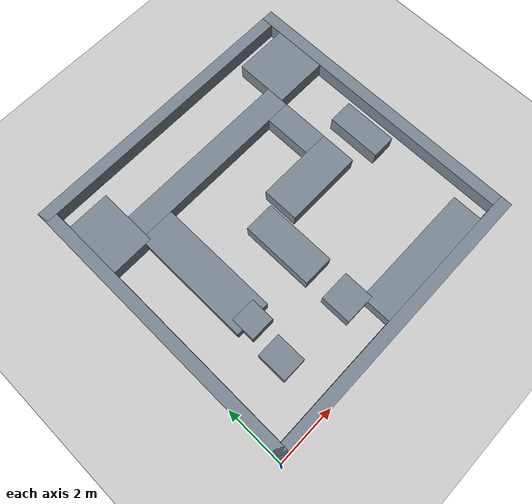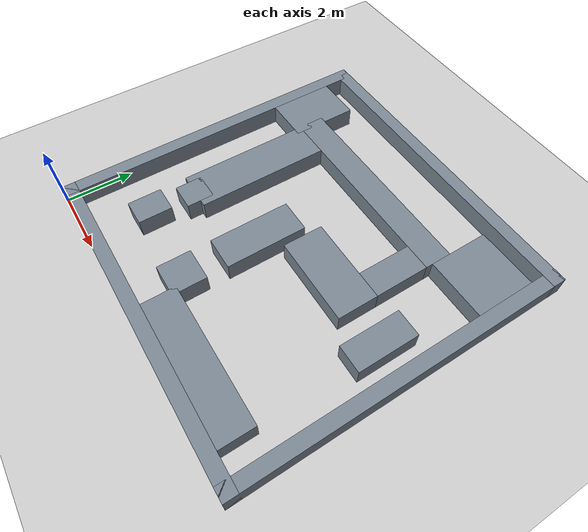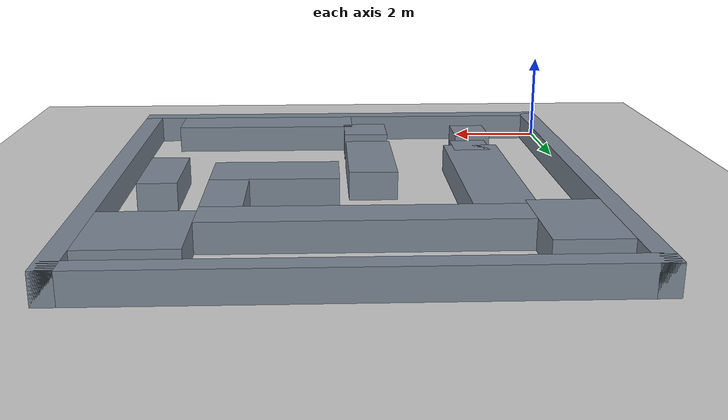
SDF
<?xml version="1.0" ?>
<sdf version="1.5">
  <world name="paper_alley">
    <!-- Global light source -->
    <include>
      <uri>model://sun</uri>
    </include>
    <!-- Ground plane -->
    <include>
      <uri>model://ground_plane</uri>
    </include>

    <scene>
      <ambient>0.7 0.7 0.7 1</ambient>
      <background>0.85 0.88 0.92 1</background>
      <shadows>true</shadows>
    </scene>

    <physics name="default_physics" default="0" type="ode">
      <max_step_size>0.002</max_step_size>
      <real_time_factor>1.0</real_time_factor>
      <real_time_update_rate>500</real_time_update_rate>
    </physics>

    <!-- Arena Boundary & Obstacle Walls from Paper Benchmark (Fig. 8 & Fig. 9) -->
    <model name="paper_wall_00">
      <static>true</static>
      <pose>5.000 0.200 0.30 0 0 0</pose>
      <link name="wall">
        <collision name="solid"><geometry><box><size>10.000 0.400 0.60</size></box></geometry></collision>
        <visual name="visual">
          <geometry><box><size>10.000 0.400 0.60</size></box></geometry>
          <material><ambient>0.48 0.53 0.58 1</ambient><diffuse>0.48 0.53 0.58 1</diffuse></material>
        </visual>
      </link>
    </model>

    <model name="paper_wall_01">
      <static>true</static>
      <pose>0.200 5.000 0.30 0 0 0</pose>
      <link name="wall">
        <collision name="solid"><geometry><box><size>0.400 10.000 0.60</size></box></geometry></collision>
        <visual name="visual">
          <geometry><box><size>0.400 10.000 0.60</size></box></geometry>
          <material><ambient>0.48 0.53 0.58 1</ambient><diffuse>0.48 0.53 0.58 1</diffuse></material>
        </visual>
      </link>
    </model>

    <model name="paper_wall_02">
      <static>true</static>
      <pose>9.800 5.000 0.30 0 0 0</pose>
      <link name="wall">
        <collision name="solid"><geometry><box><size>0.400 10.000 0.60</size></box></geometry></collision>
        <visual name="visual">
          <geometry><box><size>0.400 10.000 0.60</size></box></geometry>
          <material><ambient>0.48 0.53 0.58 1</ambient><diffuse>0.48 0.53 0.58 1</diffuse></material>
        </visual>
      </link>
    </model>

    <model name="paper_wall_03">
      <static>true</static>
      <pose>5.000 9.800 0.30 0 0 0</pose>
      <link name="wall">
        <collision name="solid"><geometry><box><size>10.000 0.400 0.60</size></box></geometry></collision>
        <visual name="visual">
          <geometry><box><size>10.000 0.400 0.60</size></box></geometry>
          <material><ambient>0.48 0.53 0.58 1</ambient><diffuse>0.48 0.53 0.58 1</diffuse></material>
        </visual>
      </link>
    </model>

    <model name="paper_wall_04">
      <static>true</static>
      <pose>2.000 1.900 0.30 0 0 0</pose>
      <link name="wall">
        <collision name="solid"><geometry><box><size>0.800 1.000 0.60</size></box></geometry></collision>
        <visual name="visual">
          <geometry><box><size>0.800 1.000 0.60</size></box></geometry>
          <material><ambient>0.48 0.53 0.58 1</ambient><diffuse>0.48 0.53 0.58 1</diffuse></material>
        </visual>
      </link>
    </model>

    <model name="paper_wall_05">
      <static>true</static>
      <pose>4.500 1.700 0.30 0 0 0</pose>
      <link name="wall">
        <collision name="solid"><geometry><box><size>1.000 1.000 0.60</size></box></geometry></collision>
        <visual name="visual">
          <geometry><box><size>1.000 1.000 0.60</size></box></geometry>
          <material><ambient>0.48 0.53 0.58 1</ambient><diffuse>0.48 0.53 0.58 1</diffuse></material>
        </visual>
      </link>
    </model>

    <model name="paper_wall_06">
      <static>true</static>
      <pose>2.200 3.200 0.30 0 0 0</pose>
      <link name="wall">
        <collision name="solid"><geometry><box><size>0.800 0.800 0.60</size></box></geometry></collision>
        <visual name="visual">
          <geometry><box><size>0.800 0.800 0.60</size></box></geometry>
          <material><ambient>0.48 0.53 0.58 1</ambient><diffuse>0.48 0.53 0.58 1</diffuse></material>
        </visual>
      </link>
    </model>

    <model name="paper_wall_07">
      <static>true</static>
      <pose>2.200 5.200 0.30 0 0 0</pose>
      <link name="wall">
        <collision name="solid"><geometry><box><size>1.200 4.000 0.60</size></box></geometry></collision>
        <visual name="visual">
          <geometry><box><size>1.200 4.000 0.60</size></box></geometry>
          <material><ambient>0.48 0.53 0.58 1</ambient><diffuse>0.48 0.53 0.58 1</diffuse></material>
        </visual>
      </link>
    </model>

    <model name="paper_wall_08">
      <static>true</static>
      <pose>4.500 4.000 0.30 0 0 0</pose>
      <link name="wall">
        <collision name="solid"><geometry><box><size>1.000 2.400 0.60</size></box></geometry></collision>
        <visual name="visual">
          <geometry><box><size>1.000 2.400 0.60</size></box></geometry>
          <material><ambient>0.48 0.53 0.58 1</ambient><diffuse>0.48 0.53 0.58 1</diffuse></material>
        </visual>
      </link>
    </model>

    <model name="paper_wall_09">
      <static>true</static>
      <pose>4.700 7.600 0.30 0 0 0</pose>
      <link name="wall">
        <collision name="solid"><geometry><box><size>6.200 0.800 0.60</size></box></geometry></collision>
        <visual name="visual">
          <geometry><box><size>6.200 0.800 0.60</size></box></geometry>
          <material><ambient>0.48 0.53 0.58 1</ambient><diffuse>0.48 0.53 0.58 1</diffuse></material>
        </visual>
      </link>
    </model>

    <model name="paper_wall_10">
      <static>true</static>
      <pose>6.500 5.000 0.30 0 0 0</pose>
      <link name="wall">
        <collision name="solid"><geometry><box><size>2.600 1.200 0.60</size></box></geometry></collision>
        <visual name="visual">
          <geometry><box><size>2.600 1.200 0.60</size></box></geometry>
          <material><ambient>0.48 0.53 0.58 1</ambient><diffuse>0.48 0.53 0.58 1</diffuse></material>
        </visual>
      </link>
    </model>

    <model name="paper_wall_11">
      <static>true</static>
      <pose>7.400 6.400 0.30 0 0 0</pose>
      <link name="wall">
        <collision name="solid"><geometry><box><size>0.800 1.600 0.60</size></box></geometry></collision>
        <visual name="visual">
          <geometry><box><size>0.800 1.600 0.60</size></box></geometry>
          <material><ambient>0.48 0.53 0.58 1</ambient><diffuse>0.48 0.53 0.58 1</diffuse></material>
        </visual>
      </link>
    </model>

    <model name="paper_wall_12">
      <static>true</static>
      <pose>6.900 0.900 0.30 0 0 0</pose>
      <link name="wall">
        <collision name="solid"><geometry><box><size>4.200 1.000 0.60</size></box></geometry></collision>
        <visual name="visual">
          <geometry><box><size>4.200 1.000 0.60</size></box></geometry>
          <material><ambient>0.48 0.53 0.58 1</ambient><diffuse>0.48 0.53 0.58 1</diffuse></material>
        </visual>
      </link>
    </model>

    <model name="paper_wall_13">
      <static>true</static>
      <pose>8.800 4.900 0.30 0 0 0</pose>
      <link name="wall">
        <collision name="solid"><geometry><box><size>0.800 1.800 0.60</size></box></geometry></collision>
        <visual name="visual">
          <geometry><box><size>0.800 1.800 0.60</size></box></geometry>
          <material><ambient>0.48 0.53 0.58 1</ambient><diffuse>0.48 0.53 0.58 1</diffuse></material>
        </visual>
      </link>
    </model>

    <model name="paper_wall_14">
      <static>true</static>
      <pose>8.700 8.300 0.30 0 0 0</pose>
      <link name="wall">
        <collision name="solid"><geometry><box><size>1.800 1.800 0.60</size></box></geometry></collision>
        <visual name="visual">
          <geometry><box><size>1.800 1.800 0.60</size></box></geometry>
          <material><ambient>0.48 0.53 0.58 1</ambient><diffuse>0.48 0.53 0.58 1</diffuse></material>
        </visual>
      </link>
    </model>

    <model name="paper_wall_15">
      <static>true</static>
      <pose>1.100 8.000 0.30 0 0 0</pose>
      <link name="wall">
        <collision name="solid"><geometry><box><size>1.400 2.000 0.60</size></box></geometry></collision>
        <visual name="visual">
          <geometry><box><size>1.400 2.000 0.60</size></box></geometry>
          <material><ambient>0.48 0.53 0.58 1</ambient><diffuse>0.48 0.53 0.58 1</diffuse></material>
        </visual>
      </link>
    </model>

  </world>
</sdf>
